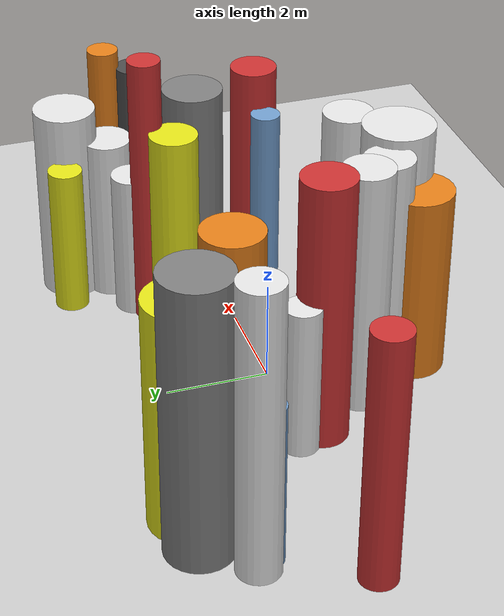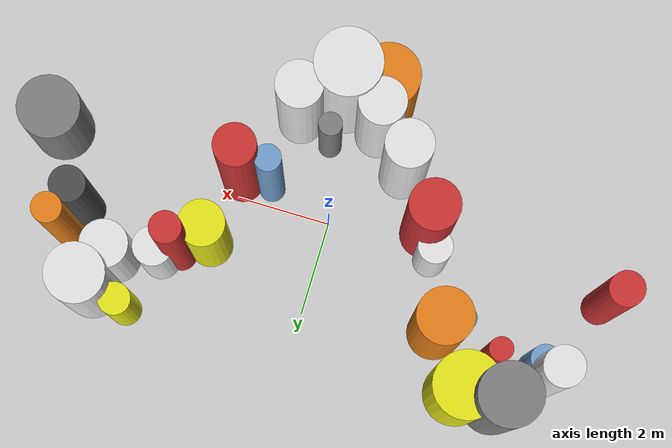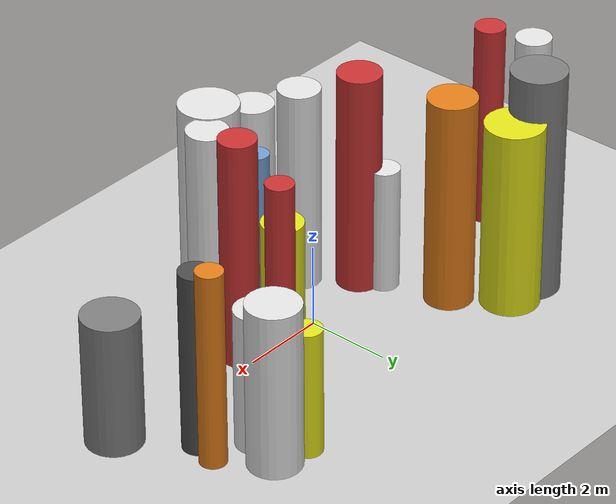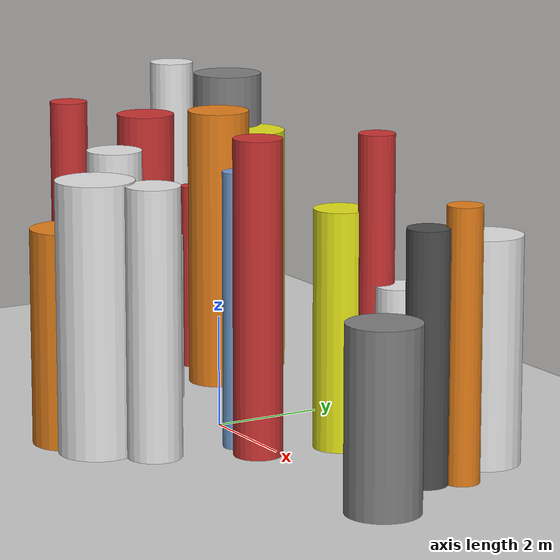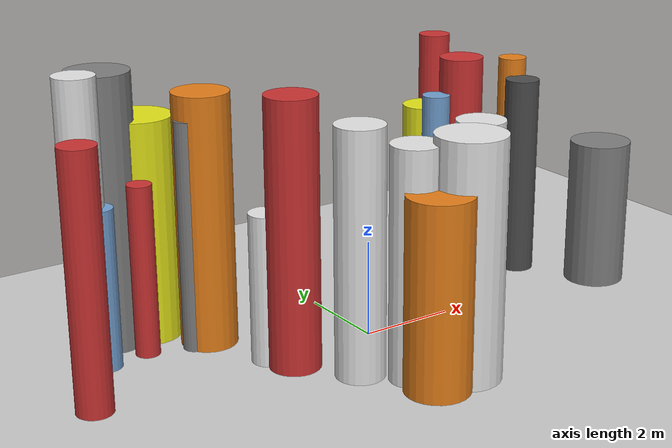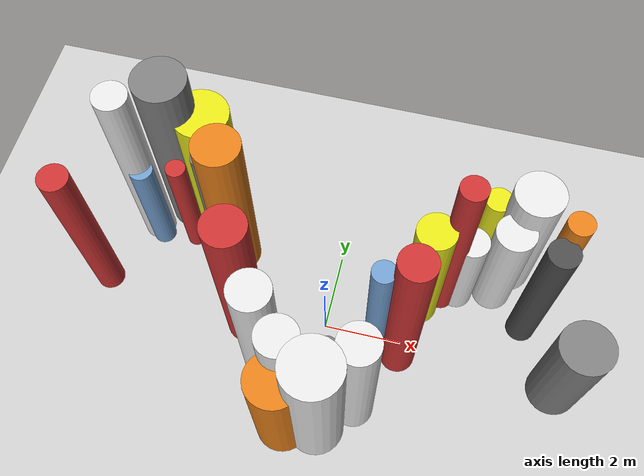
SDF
<?xml version='1.0'?>
<sdf version='1.6'>
  <world name='routeA_rl_v1__dense_recovery__rl_val__s_turn_multi_obstacle__000046'>
    <!-- Sun light -->
    <light name='sun' type='directional'>
      <cast_shadows>1</cast_shadows>
      <pose>0 0 10 0 0 0</pose>
      <diffuse>0.8 0.8 0.8 1</diffuse>
      <specular>0.2 0.2 0.2 1</specular>
      <attenuation>
        <range>1000</range>
        <constant>0.9</constant>
        <linear>0.01</linear>
        <quadratic>0.001</quadratic>
      </attenuation>
      <direction>-0.5 0.1 -0.9</direction>
    </light>

    <!-- Ground plane -->
    <model name='ground_plane'>
      <static>1</static>
      <link name='link'>
        <collision name='collision'>
          <geometry>
            <plane>
              <normal>0 0 1</normal>
              <size>100 100</size>
            </plane>
          </geometry>
          <surface>
            <contact>
              <collide_bitmask>65535</collide_bitmask>
              <ode/>
            </contact>
            <friction>
              <ode>
                <mu>100</mu>
                <mu2>50</mu2>
              </ode>
              <torsional><ode/></torsional>
            </friction>
            <bounce/>
          </surface>
          <max_contacts>10</max_contacts>
        </collision>
        <visual name='visual'>
          <cast_shadows>0</cast_shadows>
          <geometry>
            <plane>
              <normal>0 0 1</normal>
              <size>100 100</size>
            </plane>
          </geometry>
          <material>
            <script>
              <uri>file://media/materials/scripts/gazebo.material</uri>
              <n>Gazebo/Grey</n>
            </script>
          </material>
        </visual>
      </link>
    </model>

    <!-- Environment -->
    <magnetic_field>6e-06 2.3e-05 -4.2e-05</magnetic_field>
    <atmosphere type='adiabatic'/>
    <physics name='default_physics' default='0' type='ode'>
      <gravity>0 0 -9.8</gravity>
      <max_step_size>0.004</max_step_size>
      <real_time_factor>1</real_time_factor>
      <real_time_update_rate>250</real_time_update_rate>
    </physics>
    <scene>
      <ambient>0.4 0.4 0.4 1</ambient>
      <background>0.7 0.7 0.7 1</background>
      <shadows>1</shadows>
    </scene>
    <wind/>
    <spherical_coordinates>
      <surface_model>EARTH_WGS84</surface_model>
      <latitude_deg>0</latitude_deg>
      <longitude_deg>0</longitude_deg>
      <elevation>0</elevation>
      <heading_deg>0</heading_deg>
    </spherical_coordinates>

    <!-- ============ OBSTACLES (28) ============ -->
    <model name='s_turn_obs_0'>
      <static>1</static>
      <link name='link'>
        <visual name='visual'>
          <geometry>
            <cylinder>
              <radius>0.3594</radius>
              <length>5.0289</length>
            </cylinder>
          </geometry>
          <material>
            <script>
              <n>Gazebo/Red</n>
              <uri>file://media/materials/scripts/gazebo.material</uri>
            </script>
            <ambient>0.8 0.2 0.2 1</ambient>
          </material>
        </visual>
        <collision name='collision'>
          <geometry>
            <cylinder>
              <radius>0.3594</radius>
              <length>5.0289</length>
            </cylinder>
          </geometry>
          <max_contacts>10</max_contacts>
          <surface>
            <contact><ode/></contact>
            <bounce/>
            <friction>
              <ode><mu>1</mu><mu2>1</mu2></ode>
              <torsional><ode/></torsional>
            </friction>
          </surface>
        </collision>
      </link>
      <pose>-6.0000 0.0699 2.5145 0 0 0.0000</pose>
    </model>

    <model name='s_turn_obs_1'>
      <static>1</static>
      <link name='link'>
        <visual name='visual'>
          <geometry>
            <cylinder>
              <radius>0.4114</radius>
              <length>5.7665</length>
            </cylinder>
          </geometry>
          <material>
            <script>
              <n>Gazebo/White</n>
              <uri>file://media/materials/scripts/gazebo.material</uri>
            </script>
            <ambient>0.9 0.9 0.9 1</ambient>
          </material>
        </visual>
        <collision name='collision'>
          <geometry>
            <cylinder>
              <radius>0.4114</radius>
              <length>5.7665</length>
            </cylinder>
          </geometry>
          <max_contacts>10</max_contacts>
          <surface>
            <contact><ode/></contact>
            <bounce/>
            <friction>
              <ode><mu>1</mu><mu2>1</mu2></ode>
              <torsional><ode/></torsional>
            </friction>
          </surface>
        </collision>
      </link>
      <pose>-5.2000 1.9031 2.8833 0 0 0.0000</pose>
    </model>

    <model name='s_turn_obs_2'>
      <static>1</static>
      <link name='link'>
        <visual name='visual'>
          <geometry>
            <cylinder>
              <radius>0.6489</radius>
              <length>5.5967</length>
            </cylinder>
          </geometry>
          <material>
            <script>
              <n>Gazebo/Grey</n>
              <uri>file://media/materials/scripts/gazebo.material</uri>
            </script>
            <ambient>0.5 0.5 0.5 1</ambient>
          </material>
        </visual>
        <collision name='collision'>
          <geometry>
            <cylinder>
              <radius>0.6489</radius>
              <length>5.5967</length>
            </cylinder>
          </geometry>
          <max_contacts>10</max_contacts>
          <surface>
            <contact><ode/></contact>
            <bounce/>
            <friction>
              <ode><mu>1</mu><mu2>1</mu2></ode>
              <torsional><ode/></torsional>
            </friction>
          </surface>
        </collision>
      </link>
      <pose>-4.4000 2.6897 2.7984 0 0 0.0000</pose>
    </model>

    <model name='s_turn_obs_3'>
      <static>1</static>
      <link name='link'>
        <visual name='visual'>
          <geometry>
            <cylinder>
              <radius>0.6925</radius>
              <length>4.6067</length>
            </cylinder>
          </geometry>
          <material>
            <script>
              <n>Gazebo/Yellow</n>
              <uri>file://media/materials/scripts/gazebo.material</uri>
            </script>
            <ambient>0.9 0.9 0.1 1</ambient>
          </material>
        </visual>
        <collision name='collision'>
          <geometry>
            <cylinder>
              <radius>0.6925</radius>
              <length>4.6067</length>
            </cylinder>
          </geometry>
          <max_contacts>10</max_contacts>
          <surface>
            <contact><ode/></contact>
            <bounce/>
            <friction>
              <ode><mu>1</mu><mu2>1</mu2></ode>
              <torsional><ode/></torsional>
            </friction>
          </surface>
        </collision>
      </link>
      <pose>-3.6000 2.6939 2.3034 0 0 0.0000</pose>
    </model>

    <model name='s_turn_obs_4'>
      <static>1</static>
      <link name='link'>
        <visual name='visual'>
          <geometry>
            <cylinder>
              <radius>0.5735</radius>
              <length>5.1961</length>
            </cylinder>
          </geometry>
          <material>
            <script>
              <n>Gazebo/Orange</n>
              <uri>file://media/materials/scripts/gazebo.material</uri>
            </script>
            <ambient>0.9 0.5 0.1 1</ambient>
          </material>
        </visual>
        <collision name='collision'>
          <geometry>
            <cylinder>
              <radius>0.5735</radius>
              <length>5.1961</length>
            </cylinder>
          </geometry>
          <max_contacts>10</max_contacts>
          <surface>
            <contact><ode/></contact>
            <bounce/>
            <friction>
              <ode><mu>1</mu><mu2>1</mu2></ode>
              <torsional><ode/></torsional>
            </friction>
          </surface>
        </collision>
      </link>
      <pose>-2.8000 1.5845 2.5980 0 0 0.0000</pose>
    </model>

    <model name='s_turn_obs_5'>
      <static>1</static>
      <link name='link'>
        <visual name='visual'>
          <geometry>
            <cylinder>
              <radius>0.5166</radius>
              <length>5.4210</length>
            </cylinder>
          </geometry>
          <material>
            <script>
              <n>Gazebo/Red</n>
              <uri>file://media/materials/scripts/gazebo.material</uri>
            </script>
            <ambient>0.8 0.2 0.2 1</ambient>
          </material>
        </visual>
        <collision name='collision'>
          <geometry>
            <cylinder>
              <radius>0.5166</radius>
              <length>5.4210</length>
            </cylinder>
          </geometry>
          <max_contacts>10</max_contacts>
          <surface>
            <contact><ode/></contact>
            <bounce/>
            <friction>
              <ode><mu>1</mu><mu2>1</mu2></ode>
              <torsional><ode/></torsional>
            </friction>
          </surface>
        </collision>
      </link>
      <pose>-2.0000 -0.3837 2.7105 0 0 0.0000</pose>
    </model>

    <model name='s_turn_obs_6'>
      <static>1</static>
      <link name='link'>
        <visual name='visual'>
          <geometry>
            <cylinder>
              <radius>0.4942</radius>
              <length>4.9757</length>
            </cylinder>
          </geometry>
          <material>
            <script>
              <n>Gazebo/White</n>
              <uri>file://media/materials/scripts/gazebo.material</uri>
            </script>
            <ambient>0.9 0.9 0.9 1</ambient>
          </material>
        </visual>
        <collision name='collision'>
          <geometry>
            <cylinder>
              <radius>0.4942</radius>
              <length>4.9757</length>
            </cylinder>
          </geometry>
          <max_contacts>10</max_contacts>
          <surface>
            <contact><ode/></contact>
            <bounce/>
            <friction>
              <ode><mu>1</mu><mu2>1</mu2></ode>
              <torsional><ode/></torsional>
            </friction>
          </surface>
        </collision>
      </link>
      <pose>-1.2000 -1.4405 2.4879 0 0 0.0000</pose>
    </model>

    <model name='s_turn_obs_7'>
      <static>1</static>
      <link name='link'>
        <visual name='visual'>
          <geometry>
            <cylinder>
              <radius>0.6550</radius>
              <length>3.8550</length>
            </cylinder>
          </geometry>
          <material>
            <script>
              <n>Gazebo/Orange</n>
              <uri>file://media/materials/scripts/gazebo.material</uri>
            </script>
            <ambient>0.9 0.5 0.1 1</ambient>
          </material>
        </visual>
        <collision name='collision'>
          <geometry>
            <cylinder>
              <radius>0.6550</radius>
              <length>3.8550</length>
            </cylinder>
          </geometry>
          <max_contacts>10</max_contacts>
          <surface>
            <contact><ode/></contact>
            <bounce/>
            <friction>
              <ode><mu>1</mu><mu2>1</mu2></ode>
              <torsional><ode/></torsional>
            </friction>
          </surface>
        </collision>
      </link>
      <pose>-0.4000 -2.8079 1.9275 0 0 0.0000</pose>
    </model>

    <model name='s_turn_obs_8'>
      <static>1</static>
      <link name='link'>
        <visual name='visual'>
          <geometry>
            <cylinder>
              <radius>0.6984</radius>
              <length>4.8252</length>
            </cylinder>
          </geometry>
          <material>
            <script>
              <n>Gazebo/White</n>
              <uri>file://media/materials/scripts/gazebo.material</uri>
            </script>
            <ambient>0.9 0.9 0.9 1</ambient>
          </material>
        </visual>
        <collision name='collision'>
          <geometry>
            <cylinder>
              <radius>0.6984</radius>
              <length>4.8252</length>
            </cylinder>
          </geometry>
          <max_contacts>10</max_contacts>
          <surface>
            <contact><ode/></contact>
            <bounce/>
            <friction>
              <ode><mu>1</mu><mu2>1</mu2></ode>
              <torsional><ode/></torsional>
            </friction>
          </surface>
        </collision>
      </link>
      <pose>0.4000 -2.6597 2.4126 0 0 0.0000</pose>
    </model>

    <model name='s_turn_obs_9'>
      <static>1</static>
      <link name='link'>
        <visual name='visual'>
          <geometry>
            <cylinder>
              <radius>0.4878</radius>
              <length>4.7923</length>
            </cylinder>
          </geometry>
          <material>
            <script>
              <n>Gazebo/White</n>
              <uri>file://media/materials/scripts/gazebo.material</uri>
            </script>
            <ambient>0.9 0.9 0.9 1</ambient>
          </material>
        </visual>
        <collision name='collision'>
          <geometry>
            <cylinder>
              <radius>0.4878</radius>
              <length>4.7923</length>
            </cylinder>
          </geometry>
          <max_contacts>10</max_contacts>
          <surface>
            <contact><ode/></contact>
            <bounce/>
            <friction>
              <ode><mu>1</mu><mu2>1</mu2></ode>
              <torsional><ode/></torsional>
            </friction>
          </surface>
        </collision>
      </link>
      <pose>1.2000 -1.9633 2.3962 0 0 0.0000</pose>
    </model>

    <model name='s_turn_obs_10'>
      <static>1</static>
      <link name='link'>
        <visual name='visual'>
          <geometry>
            <cylinder>
              <radius>0.4328</radius>
              <length>5.5905</length>
            </cylinder>
          </geometry>
          <material>
            <script>
              <n>Gazebo/Red</n>
              <uri>file://media/materials/scripts/gazebo.material</uri>
            </script>
            <ambient>0.8 0.2 0.2 1</ambient>
          </material>
        </visual>
        <collision name='collision'>
          <geometry>
            <cylinder>
              <radius>0.4328</radius>
              <length>5.5905</length>
            </cylinder>
          </geometry>
          <max_contacts>10</max_contacts>
          <surface>
            <contact><ode/></contact>
            <bounce/>
            <friction>
              <ode><mu>1</mu><mu2>1</mu2></ode>
              <torsional><ode/></torsional>
            </friction>
          </surface>
        </collision>
      </link>
      <pose>2.0000 -0.3558 2.7952 0 0 0.0000</pose>
    </model>

    <model name='s_turn_obs_11'>
      <static>1</static>
      <link name='link'>
        <visual name='visual'>
          <geometry>
            <cylinder>
              <radius>0.3210</radius>
              <length>5.6298</length>
            </cylinder>
          </geometry>
          <material>
            <script>
              <n>Gazebo/Red</n>
              <uri>file://media/materials/scripts/gazebo.material</uri>
            </script>
            <ambient>0.8 0.2 0.2 1</ambient>
          </material>
        </visual>
        <collision name='collision'>
          <geometry>
            <cylinder>
              <radius>0.3210</radius>
              <length>5.6298</length>
            </cylinder>
          </geometry>
          <max_contacts>10</max_contacts>
          <surface>
            <contact><ode/></contact>
            <bounce/>
            <friction>
              <ode><mu>1</mu><mu2>1</mu2></ode>
              <torsional><ode/></torsional>
            </friction>
          </surface>
        </collision>
      </link>
      <pose>2.8000 1.5413 2.8149 0 0 0.0000</pose>
    </model>

    <model name='s_turn_obs_12'>
      <static>1</static>
      <link name='link'>
        <visual name='visual'>
          <geometry>
            <cylinder>
              <radius>0.3387</radius>
              <length>3.0903</length>
            </cylinder>
          </geometry>
          <material>
            <script>
              <n>Gazebo/Yellow</n>
              <uri>file://media/materials/scripts/gazebo.material</uri>
            </script>
            <ambient>0.9 0.9 0.1 1</ambient>
          </material>
        </visual>
        <collision name='collision'>
          <geometry>
            <cylinder>
              <radius>0.3387</radius>
              <length>3.0903</length>
            </cylinder>
          </geometry>
          <max_contacts>10</max_contacts>
          <surface>
            <contact><ode/></contact>
            <bounce/>
            <friction>
              <ode><mu>1</mu><mu2>1</mu2></ode>
              <torsional><ode/></torsional>
            </friction>
          </surface>
        </collision>
      </link>
      <pose>3.6000 2.9887 1.5451 0 0 0.0000</pose>
    </model>

    <model name='s_turn_obs_13'>
      <static>1</static>
      <link name='link'>
        <visual name='visual'>
          <geometry>
            <cylinder>
              <radius>0.6175</radius>
              <length>4.0240</length>
            </cylinder>
          </geometry>
          <material>
            <script>
              <n>Gazebo/White</n>
              <uri>file://media/materials/scripts/gazebo.material</uri>
            </script>
            <ambient>0.9 0.9 0.9 1</ambient>
          </material>
        </visual>
        <collision name='collision'>
          <geometry>
            <cylinder>
              <radius>0.6175</radius>
              <length>4.0240</length>
            </cylinder>
          </geometry>
          <max_contacts>10</max_contacts>
          <surface>
            <contact><ode/></contact>
            <bounce/>
            <friction>
              <ode><mu>1</mu><mu2>1</mu2></ode>
              <torsional><ode/></torsional>
            </friction>
          </surface>
        </collision>
      </link>
      <pose>4.4000 2.7743 2.0120 0 0 0.0000</pose>
    </model>

    <model name='s_turn_obs_14'>
      <static>1</static>
      <link name='link'>
        <visual name='visual'>
          <geometry>
            <cylinder>
              <radius>0.3097</radius>
              <length>4.7743</length>
            </cylinder>
          </geometry>
          <material>
            <script>
              <n>Gazebo/Orange</n>
              <uri>file://media/materials/scripts/gazebo.material</uri>
            </script>
            <ambient>0.9 0.5 0.1 1</ambient>
          </material>
        </visual>
        <collision name='collision'>
          <geometry>
            <cylinder>
              <radius>0.3097</radius>
              <length>4.7743</length>
            </cylinder>
          </geometry>
          <max_contacts>10</max_contacts>
          <surface>
            <contact><ode/></contact>
            <bounce/>
            <friction>
              <ode><mu>1</mu><mu2>1</mu2></ode>
              <torsional><ode/></torsional>
            </friction>
          </surface>
        </collision>
      </link>
      <pose>5.2000 1.7580 2.3872 0 0 0.0000</pose>
    </model>

    <model name='s_turn_obs_15'>
      <static>1</static>
      <link name='link'>
        <visual name='visual'>
          <geometry>
            <cylinder>
              <radius>0.6511</radius>
              <length>3.1940</length>
            </cylinder>
          </geometry>
          <material>
            <script>
              <n>Gazebo/Grey</n>
              <uri>file://media/materials/scripts/gazebo.material</uri>
            </script>
            <ambient>0.5 0.5 0.5 1</ambient>
          </material>
        </visual>
        <collision name='collision'>
          <geometry>
            <cylinder>
              <radius>0.6511</radius>
              <length>3.1940</length>
            </cylinder>
          </geometry>
          <max_contacts>10</max_contacts>
          <surface>
            <contact><ode/></contact>
            <bounce/>
            <friction>
              <ode><mu>1</mu><mu2>1</mu2></ode>
              <torsional><ode/></torsional>
            </friction>
          </surface>
        </collision>
      </link>
      <pose>6.0000 -0.3270 1.5970 0 0 0.0000</pose>
    </model>

    <model name='s_turn_obs2_0'>
      <static>1</static>
      <link name='link'>
        <visual name='visual'>
          <geometry>
            <cylinder>
              <radius>0.2983</radius>
              <length>3.2527</length>
            </cylinder>
          </geometry>
          <material>
            <script>
              <n>Gazebo/Blue</n>
              <uri>file://media/materials/scripts/gazebo.material</uri>
            </script>
            <ambient>0.447 0.624 0.812 1</ambient>
          </material>
        </visual>
        <collision name='collision'>
          <geometry>
            <cylinder>
              <radius>0.2983</radius>
              <length>3.2527</length>
            </cylinder>
          </geometry>
          <max_contacts>10</max_contacts>
          <surface>
            <contact><ode/></contact>
            <bounce/>
            <friction>
              <ode><mu>1</mu><mu2>1</mu2></ode>
              <torsional><ode/></torsional>
            </friction>
          </surface>
        </collision>
      </link>
      <pose>-5.0000 1.6762 1.6264 0 0 0.0000</pose>
    </model>

    <model name='s_turn_obs2_1'>
      <static>1</static>
      <link name='link'>
        <visual name='visual'>
          <geometry>
            <cylinder>
              <radius>0.2496</radius>
              <length>3.5267</length>
            </cylinder>
          </geometry>
          <material>
            <script>
              <n>Gazebo/Red</n>
              <uri>file://media/materials/scripts/gazebo.material</uri>
            </script>
            <ambient>0.8 0.2 0.2 1</ambient>
          </material>
        </visual>
        <collision name='collision'>
          <geometry>
            <cylinder>
              <radius>0.2496</radius>
              <length>3.5267</length>
            </cylinder>
          </geometry>
          <max_contacts>10</max_contacts>
          <surface>
            <contact><ode/></contact>
            <bounce/>
            <friction>
              <ode><mu>1</mu><mu2>1</mu2></ode>
              <torsional><ode/></torsional>
            </friction>
          </surface>
        </collision>
      </link>
      <pose>-4.0909 1.7605 1.7633 0 0 0.0000</pose>
    </model>

    <model name='s_turn_obs2_2'>
      <static>1</static>
      <link name='link'>
        <visual name='visual'>
          <geometry>
            <cylinder>
              <radius>0.2435</radius>
              <length>4.7004</length>
            </cylinder>
          </geometry>
          <material>
            <script>
              <n>Gazebo/Grey</n>
              <uri>file://media/materials/scripts/gazebo.material</uri>
            </script>
            <ambient>0.5 0.5 0.5 1</ambient>
          </material>
        </visual>
        <collision name='collision'>
          <geometry>
            <cylinder>
              <radius>0.2435</radius>
              <length>4.7004</length>
            </cylinder>
          </geometry>
          <max_contacts>10</max_contacts>
          <surface>
            <contact><ode/></contact>
            <bounce/>
            <friction>
              <ode><mu>1</mu><mu2>1</mu2></ode>
              <torsional><ode/></torsional>
            </friction>
          </surface>
        </collision>
      </link>
      <pose>-3.1818 1.4842 2.3502 0 0 0.0000</pose>
    </model>

    <model name='s_turn_obs2_3'>
      <static>1</static>
      <link name='link'>
        <visual name='visual'>
          <geometry>
            <cylinder>
              <radius>0.3580</radius>
              <length>3.0561</length>
            </cylinder>
          </geometry>
          <material>
            <script>
              <n>Gazebo/White</n>
              <uri>file://media/materials/scripts/gazebo.material</uri>
            </script>
            <ambient>0.9 0.9 0.9 1</ambient>
          </material>
        </visual>
        <collision name='collision'>
          <geometry>
            <cylinder>
              <radius>0.3580</radius>
              <length>3.0561</length>
            </cylinder>
          </geometry>
          <max_contacts>10</max_contacts>
          <surface>
            <contact><ode/></contact>
            <bounce/>
            <friction>
              <ode><mu>1</mu><mu2>1</mu2></ode>
              <torsional><ode/></torsional>
            </friction>
          </surface>
        </collision>
      </link>
      <pose>-2.2727 0.1245 1.5281 0 0 0.0000</pose>
    </model>

    <model name='s_turn_obs2_4'>
      <static>1</static>
      <link name='link'>
        <visual name='visual'>
          <geometry>
            <cylinder>
              <radius>0.2736</radius>
              <length>3.4740</length>
            </cylinder>
          </geometry>
          <material>
            <script>
              <n>Gazebo/DarkGrey</n>
              <uri>file://media/materials/scripts/gazebo.material</uri>
            </script>
            <ambient>0.3 0.3 0.3 1</ambient>
          </material>
        </visual>
        <collision name='collision'>
          <geometry>
            <cylinder>
              <radius>0.2736</radius>
              <length>3.4740</length>
            </cylinder>
          </geometry>
          <max_contacts>10</max_contacts>
          <surface>
            <contact><ode/></contact>
            <bounce/>
            <friction>
              <ode><mu>1</mu><mu2>1</mu2></ode>
              <torsional><ode/></torsional>
            </friction>
          </surface>
        </collision>
      </link>
      <pose>-1.3636 -1.4200 1.7370 0 0 0.0000</pose>
    </model>

    <model name='s_turn_obs2_5'>
      <static>1</static>
      <link name='link'>
        <visual name='visual'>
          <geometry>
            <cylinder>
              <radius>0.4905</radius>
              <length>4.6541</length>
            </cylinder>
          </geometry>
          <material>
            <script>
              <n>Gazebo/White</n>
              <uri>file://media/materials/scripts/gazebo.material</uri>
            </script>
            <ambient>0.9 0.9 0.9 1</ambient>
          </material>
        </visual>
        <collision name='collision'>
          <geometry>
            <cylinder>
              <radius>0.4905</radius>
              <length>4.6541</length>
            </cylinder>
          </geometry>
          <max_contacts>10</max_contacts>
          <surface>
            <contact><ode/></contact>
            <bounce/>
            <friction>
              <ode><mu>1</mu><mu2>1</mu2></ode>
              <torsional><ode/></torsional>
            </friction>
          </surface>
        </collision>
      </link>
      <pose>-0.4545 -2.1414 2.3270 0 0 0.0000</pose>
    </model>

    <model name='s_turn_obs2_6'>
      <static>1</static>
      <link name='link'>
        <visual name='visual'>
          <geometry>
            <cylinder>
              <radius>0.2462</radius>
              <length>3.1965</length>
            </cylinder>
          </geometry>
          <material>
            <script>
              <n>Gazebo/Grey</n>
              <uri>file://media/materials/scripts/gazebo.material</uri>
            </script>
            <ambient>0.5 0.5 0.5 1</ambient>
          </material>
        </visual>
        <collision name='collision'>
          <geometry>
            <cylinder>
              <radius>0.2462</radius>
              <length>3.1965</length>
            </cylinder>
          </geometry>
          <max_contacts>10</max_contacts>
          <surface>
            <contact><ode/></contact>
            <bounce/>
            <friction>
              <ode><mu>1</mu><mu2>1</mu2></ode>
              <torsional><ode/></torsional>
            </friction>
          </surface>
        </collision>
      </link>
      <pose>0.4545 -1.6219 1.5983 0 0 0.0000</pose>
    </model>

    <model name='s_turn_obs2_7'>
      <static>1</static>
      <link name='link'>
        <visual name='visual'>
          <geometry>
            <cylinder>
              <radius>0.2749</radius>
              <length>4.9116</length>
            </cylinder>
          </geometry>
          <material>
            <script>
              <n>Gazebo/Blue</n>
              <uri>file://media/materials/scripts/gazebo.material</uri>
            </script>
            <ambient>0.447 0.624 0.812 1</ambient>
          </material>
        </visual>
        <collision name='collision'>
          <geometry>
            <cylinder>
              <radius>0.2749</radius>
              <length>4.9116</length>
            </cylinder>
          </geometry>
          <max_contacts>10</max_contacts>
          <surface>
            <contact><ode/></contact>
            <bounce/>
            <friction>
              <ode><mu>1</mu><mu2>1</mu2></ode>
              <torsional><ode/></torsional>
            </friction>
          </surface>
        </collision>
      </link>
      <pose>1.3636 -0.3839 2.4558 0 0 0.0000</pose>
    </model>

    <model name='s_turn_obs2_8'>
      <static>1</static>
      <link name='link'>
        <visual name='visual'>
          <geometry>
            <cylinder>
              <radius>0.4742</radius>
              <length>4.2678</length>
            </cylinder>
          </geometry>
          <material>
            <script>
              <n>Gazebo/Yellow</n>
              <uri>file://media/materials/scripts/gazebo.material</uri>
            </script>
            <ambient>0.9 0.9 0.1 1</ambient>
          </material>
        </visual>
        <collision name='collision'>
          <geometry>
            <cylinder>
              <radius>0.4742</radius>
              <length>4.2678</length>
            </cylinder>
          </geometry>
          <max_contacts>10</max_contacts>
          <surface>
            <contact><ode/></contact>
            <bounce/>
            <friction>
              <ode><mu>1</mu><mu2>1</mu2></ode>
              <torsional><ode/></torsional>
            </friction>
          </surface>
        </collision>
      </link>
      <pose>2.2727 1.1400 2.1339 0 0 0.0000</pose>
    </model>

    <model name='s_turn_obs2_9'>
      <static>1</static>
      <link name='link'>
        <visual name='visual'>
          <geometry>
            <cylinder>
              <radius>0.4097</radius>
              <length>3.0090</length>
            </cylinder>
          </geometry>
          <material>
            <script>
              <n>Gazebo/White</n>
              <uri>file://media/materials/scripts/gazebo.material</uri>
            </script>
            <ambient>0.9 0.9 0.9 1</ambient>
          </material>
        </visual>
        <collision name='collision'>
          <geometry>
            <cylinder>
              <radius>0.4097</radius>
              <length>3.0090</length>
            </cylinder>
          </geometry>
          <max_contacts>10</max_contacts>
          <surface>
            <contact><ode/></contact>
            <bounce/>
            <friction>
              <ode><mu>1</mu><mu2>1</mu2></ode>
              <torsional><ode/></torsional>
            </friction>
          </surface>
        </collision>
      </link>
      <pose>3.1818 1.7537 1.5045 0 0 0.0000</pose>
    </model>

    <model name='s_turn_obs2_10'>
      <static>1</static>
      <link name='link'>
        <visual name='visual'>
          <geometry>
            <cylinder>
              <radius>0.4973</radius>
              <length>3.3927</length>
            </cylinder>
          </geometry>
          <material>
            <script>
              <n>Gazebo/White</n>
              <uri>file://media/materials/scripts/gazebo.material</uri>
            </script>
            <ambient>0.9 0.9 0.9 1</ambient>
          </material>
        </visual>
        <collision name='collision'>
          <geometry>
            <cylinder>
              <radius>0.4973</radius>
              <length>3.3927</length>
            </cylinder>
          </geometry>
          <max_contacts>10</max_contacts>
          <surface>
            <contact><ode/></contact>
            <bounce/>
            <friction>
              <ode><mu>1</mu><mu2>1</mu2></ode>
              <torsional><ode/></torsional>
            </friction>
          </surface>
        </collision>
      </link>
      <pose>4.0909 2.0141 1.6963 0 0 0.0000</pose>
    </model>

    <model name='s_turn_obs2_11'>
      <static>1</static>
      <link name='link'>
        <visual name='visual'>
          <geometry>
            <cylinder>
              <radius>0.3736</radius>
              <length>4.4127</length>
            </cylinder>
          </geometry>
          <material>
            <script>
              <n>Gazebo/DarkGrey</n>
              <uri>file://media/materials/scripts/gazebo.material</uri>
            </script>
            <ambient>0.3 0.3 0.3 1</ambient>
          </material>
        </visual>
        <collision name='collision'>
          <geometry>
            <cylinder>
              <radius>0.3736</radius>
              <length>4.4127</length>
            </cylinder>
          </geometry>
          <max_contacts>10</max_contacts>
          <surface>
            <contact><ode/></contact>
            <bounce/>
            <friction>
              <ode><mu>1</mu><mu2>1</mu2></ode>
              <torsional><ode/></torsional>
            </friction>
          </surface>
        </collision>
      </link>
      <pose>5.0000 1.1714 2.2063 0 0 0.0000</pose>
    </model>

    <!-- GUI camera -->
    <gui fullscreen='0'>
      <camera name='user_camera'>
        <pose>-15 0 18 0 0.85 0.15</pose>
        <view_controller>orbit</view_controller>
        <projection_type>perspective</projection_type>
      </camera>
    </gui>
  </world>
</sdf>
